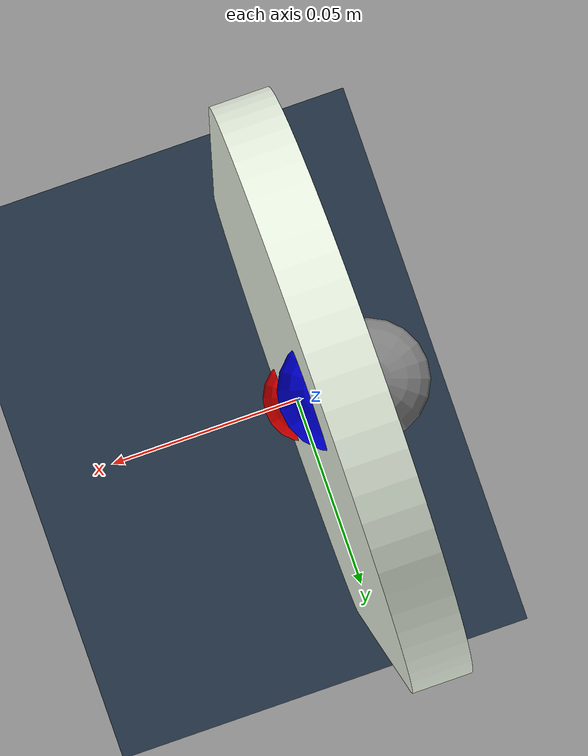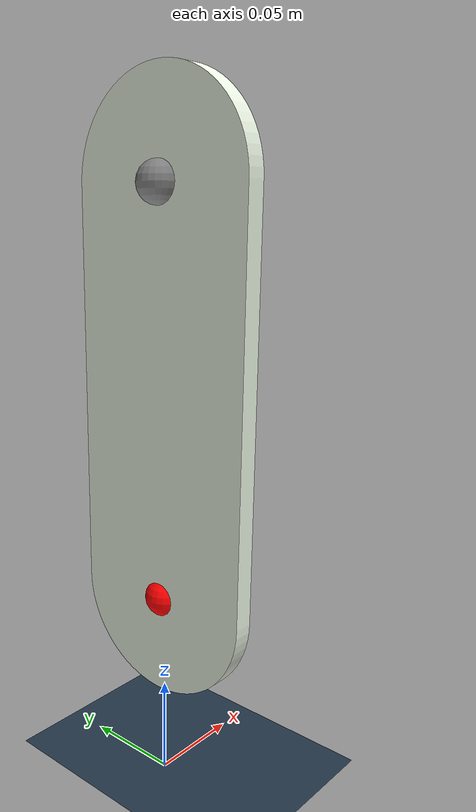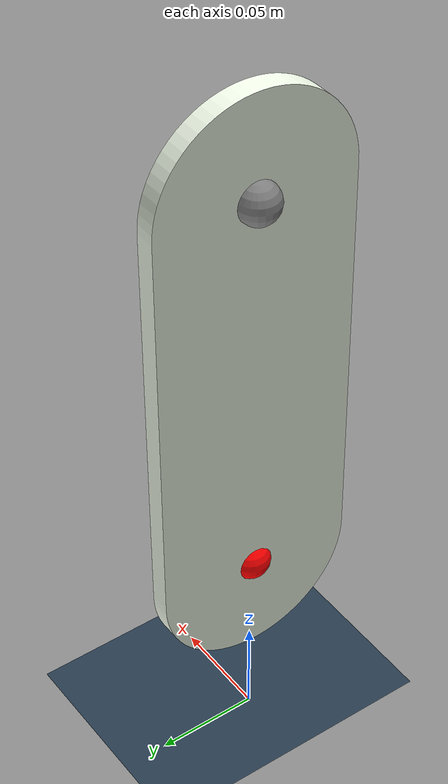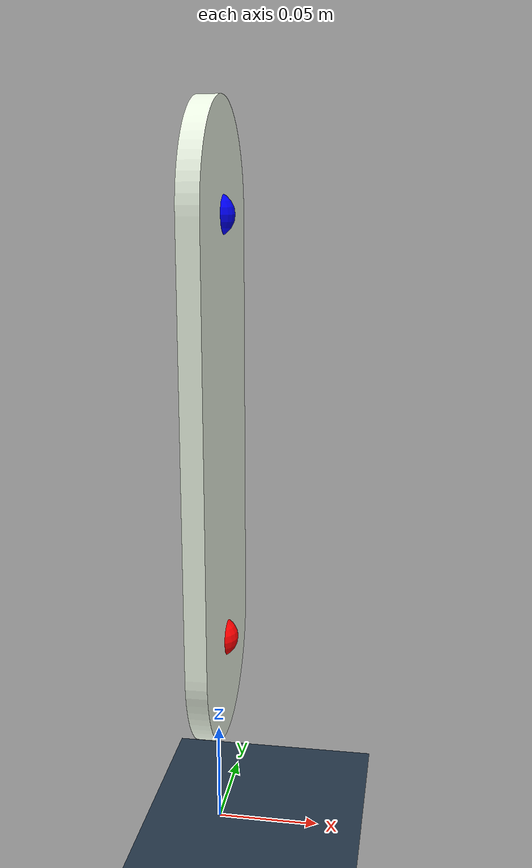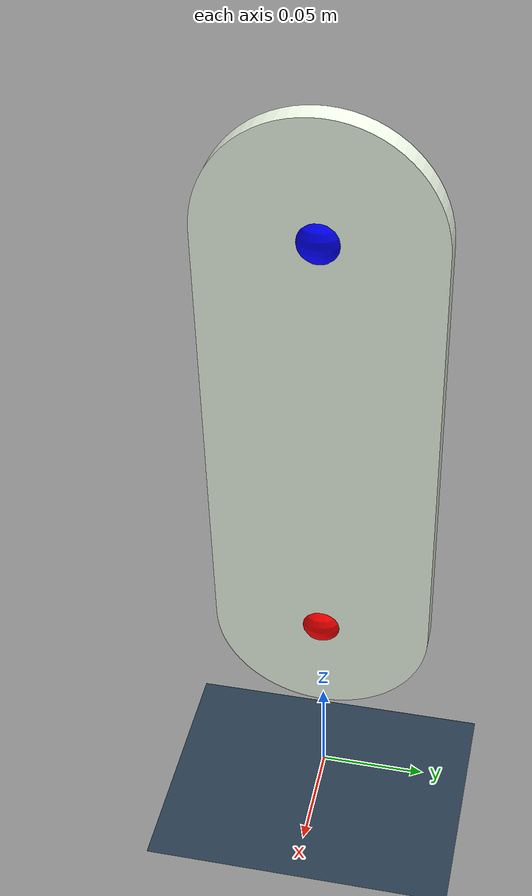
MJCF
<mujoco>
<!-- Flexible joint version -->
<!-- Damping coefficient = 0.5, Stiffness = 1000-->
   <asset>
      <texture name="texplane" type="2d" builtin="checker" rgb1=".2 .3 .4" rgb2=".1 0.15 0.2" width="512" height="512"/>
      <material name="MatGnd" reflectance="0.1" texture="texplane" texrepeat="4 4" texuniform="true"/>
   	<mesh name="core_shaft_visual" file="meshes/visual/core_shaft.stl"/>
   	<mesh name="core_shaft_collision" file="meshes/collision/core_shaft.stl"/>
   	<mesh name="coupling_visual" file="meshes/visual/coupling.stl"/>
   	<mesh name="coupling_collision" file="meshes/collision/coupling.stl"/>
      <mesh name="shaft_visual" file="meshes/visual/shaft.stl"/>
   	<mesh name="shaft_collision" file="meshes/collision/shaft.stl"/>
      <mesh name="shaft_torquesensor_visual" file="meshes/visual/shaft_torquesensor.stl"/>
   	<mesh name="shaft_torquesensor_collision" file="meshes/collision/shaft_torquesensor.stl"/>
      <mesh name="torquesensor_pb2_visual" file="meshes/visual/torquesensor_pb2.stl"/>
   	<mesh name="torquesensor_pb2_collision" file="meshes/collision/torquesensor_pb2.stl"/>
      <mesh name="robot_arm_visual" file="meshes/visual/robot_arm.stl"/>
   	<mesh name="robot_arm_collision" file="meshes/collision/robot_arm.stl"/>
   </asset>

   <default class="onedof">
      <default class="visual">
         <geom contype="0" conaffinity="0" group="0" type="mesh" rgba="0.3 0.3 0.3 1" mass="0"/>
      </default>
      <default class="collision">
         <geom contype="1" conaffinity="1" group="3" type="mesh" rgba=".5 .6 .7 1"/>
      </default>
   </default>

   <option timestep="0.0001" integrator="Euler" >
      <flag sensornoise="enable" energy="enable" contact="enable" gravity="enable"/>
   </option>

   <worldbody>
      <light pos="0 0 1000" castshadow="false" />
      <geom name="ground" pos="0 0 0" size="5 5 10" material="MatGnd" type="plane" contype="1" conaffinity="0.1"/>

      <body name="robot_arm" pos="0 0 0.2" euler="0 0 0" childclass="onedof">
         <joint name="joint" type="hinge" axis="1 0 0" pos="0 0 0.1" frictionloss="0" armature="0.501644" damping="0"/>
         <joint name="spring" type="hinge" axis="1 0 0" pos="0 0 0.1" stiffness="1000" damping="5"/>
         <inertial pos="0 0 0" mass="0.00000001" diaginertia="0.000000001 0.000000001 0.000000001"/>

         <geom class="visual" rgba = ".95 .99 .92 1" mesh="robot_arm_visual"/>
         <geom class="collision" mesh="robot_arm_collision"/>

         <site name="torque_sensor" type="sphere" size="0.01" pos="-0.005 0 0.1"/>
         <site name="link1" type="sphere" size="0.01" rgba = "0 0 1 1" pos="0 0 0.1"/>
         <site name="endeffector" type="sphere" size="0.01" rgba = "1 0 0 1" pos="0 0 -0.1"/>

         <body name ="point_mass" pos="0 0 -0.1">
            <inertial pos="0 0 0" mass="5"/>
            <geom type="sphere" size="0.001"/>
         </body>
      </body>

   </worldbody>

   <actuator>
         <motor joint="joint" name="joint_torque" gear="1" ctrllimited="true" ctrlrange="-100 100"/>
   </actuator>

   <sensor>
      <torque name="torque_sensor" site="torque_sensor"/>
      <framepos name="endeffector_pos" objtype="site" objname="endeffector"/>
      <framequat name="endeffector_quat" objtype="site" objname="endeffector"/>

      <framepos name="link1_pos" objtype="site" objname="link1"/>
      <framequat name="link1_quat" objtype="site" objname="link1"/>

   </sensor>
</mujoco>
